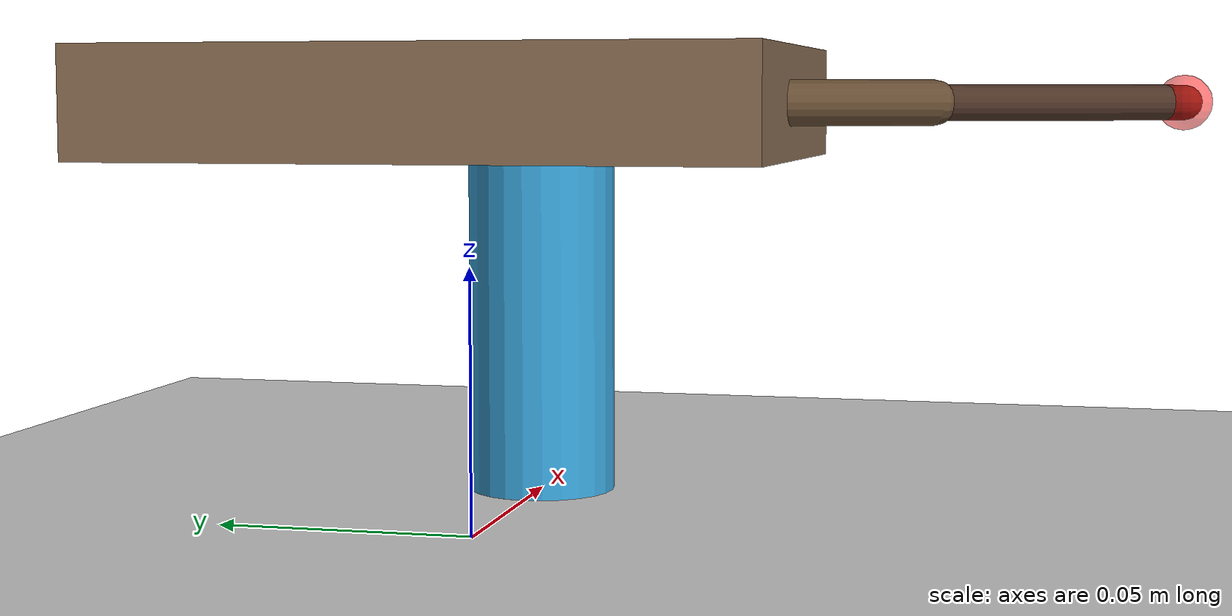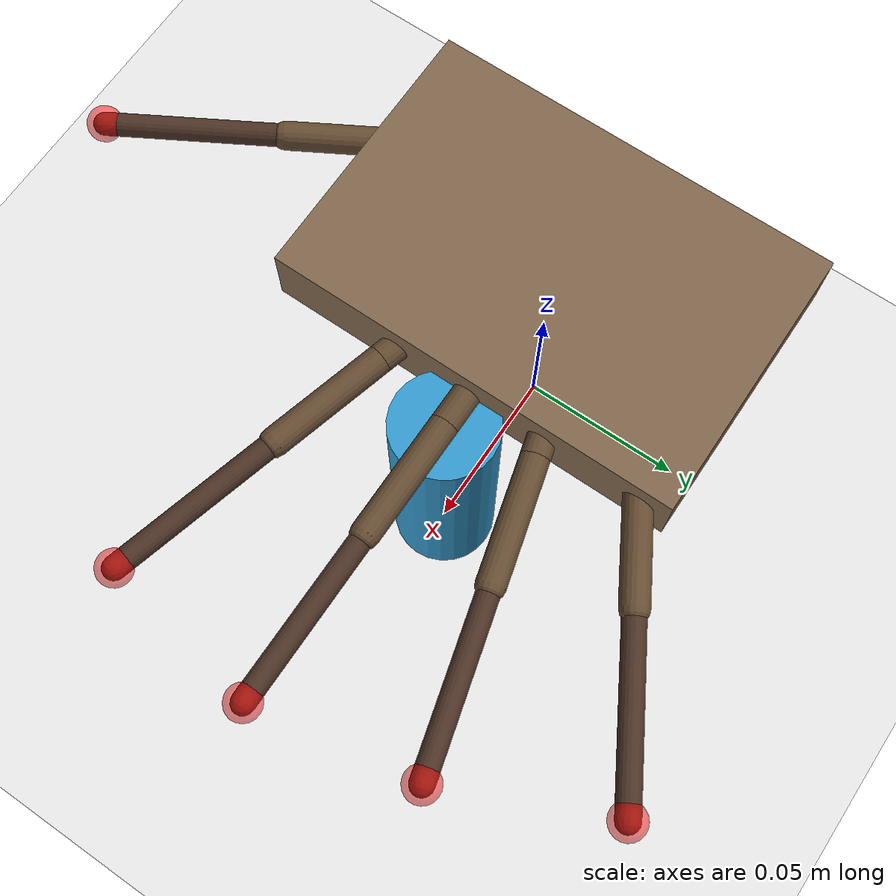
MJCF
<mujoco model="spider_hand_powergrasp">
  <compiler angle="degree"/>
  <option timestep="0.002" gravity="0 0 -9.81" integrator="RK4"/>
  <default>
    <joint damping="0.5" armature="0.01"/>
    <geom friction="1.0 0.005 0.0001" condim="3"/>
  </default>
  <worldbody>
    <light diffuse="0.5 0.5 0.5" pos="0 0 3" dir="0 0 -1"/>
    <geom name="floor" type="plane" size="1 1 0.1" rgba="0.9 0.9 0.9 1"/>

    <body name="cylinder" pos="0.05 0 0.04">
      <freejoint name="cylinder_root"/>
      <geom name="cylinder_geom" type="cylinder" size="0.015 0.04" mass="0.5" rgba="0.2 0.6 0.8 1"/>
    </body>

    <body name="palm" pos="0 0 0.08">
      <geom name="palm_geom" type="box" size="0.04 0.06 0.01" rgba="0.5 0.4 0.3 1"/>
      <body name="thumb" pos="-0.02 -0.04 0" euler="0 0 -60">
        <joint name="thumb_coxa_joint" type="hinge" axis="0 0 1" range="-60 60"/>
        <geom name="thumb_coxa_geom" type="capsule" size="0.004" fromto="0 0 0 0.015 0 0" rgba="0.4 0.3 0.2 1"/>
        <body name="thumb_femur" pos="0.015 0 0">
          <joint name="thumb_femur_joint" type="hinge" axis="0 1 0" range="-45 90"/>
          <geom name="thumb_femur_geom" type="capsule" size="0.004" fromto="0 0 0 0.035 0 0" rgba="0.4 0.3 0.2 1"/>
          <body name="thumb_tibia" pos="0.035 0 0">
            <joint name="thumb_tibia_joint" type="hinge" axis="0 1 0" range="0 120"/>
            <geom name="thumb_tibia_geom" type="capsule" size="0.0032" fromto="0 0 0 0.05 0 0" rgba="0.3 0.2 0.15 1"/>
            <site name="thumb_tip" pos="0.05 0 0" size="0.005" type="sphere" rgba="1 0 0 0.5"/>
          </body>
        </body>
      </body>
      <body name="index" pos="0.03 -0.02 0" euler="0 0 -15">
        <joint name="index_coxa_joint" type="hinge" axis="0 0 1" range="-60 60"/>
        <geom name="index_coxa_geom" type="capsule" size="0.004" fromto="0 0 0 0.015 0 0" rgba="0.4 0.3 0.2 1"/>
        <body name="index_femur" pos="0.015 0 0">
          <joint name="index_femur_joint" type="hinge" axis="0 1 0" range="-45 90"/>
          <geom name="index_femur_geom" type="capsule" size="0.004" fromto="0 0 0 0.035 0 0" rgba="0.4 0.3 0.2 1"/>
          <body name="index_tibia" pos="0.035 0 0">
            <joint name="index_tibia_joint" type="hinge" axis="0 1 0" range="0 120"/>
            <geom name="index_tibia_geom" type="capsule" size="0.0032" fromto="0 0 0 0.05 0 0" rgba="0.3 0.2 0.15 1"/>
            <site name="index_tip" pos="0.05 0 0" size="0.005" type="sphere" rgba="1 0 0 0.5"/>
          </body>
        </body>
      </body>
      <body name="middle" pos="0.035 0 0" euler="0 0 0">
        <joint name="middle_coxa_joint" type="hinge" axis="0 0 1" range="-60 60"/>
        <geom name="middle_coxa_geom" type="capsule" size="0.004" fromto="0 0 0 0.015 0 0" rgba="0.4 0.3 0.2 1"/>
        <body name="middle_femur" pos="0.015 0 0">
          <joint name="middle_femur_joint" type="hinge" axis="0 1 0" range="-45 90"/>
          <geom name="middle_femur_geom" type="capsule" size="0.004" fromto="0 0 0 0.035 0 0" rgba="0.4 0.3 0.2 1"/>
          <body name="middle_tibia" pos="0.035 0 0">
            <joint name="middle_tibia_joint" type="hinge" axis="0 1 0" range="0 120"/>
            <geom name="middle_tibia_geom" type="capsule" size="0.0032" fromto="0 0 0 0.05 0 0" rgba="0.3 0.2 0.15 1"/>
            <site name="middle_tip" pos="0.05 0 0" size="0.005" type="sphere" rgba="1 0 0 0.5"/>
          </body>
        </body>
      </body>
      <body name="ring" pos="0.03 0.02 0" euler="0 0 15">
        <joint name="ring_coxa_joint" type="hinge" axis="0 0 1" range="-60 60"/>
        <geom name="ring_coxa_geom" type="capsule" size="0.004" fromto="0 0 0 0.015 0 0" rgba="0.4 0.3 0.2 1"/>
        <body name="ring_femur" pos="0.015 0 0">
          <joint name="ring_femur_joint" type="hinge" axis="0 1 0" range="-45 90"/>
          <geom name="ring_femur_geom" type="capsule" size="0.004" fromto="0 0 0 0.035 0 0" rgba="0.4 0.3 0.2 1"/>
          <body name="ring_tibia" pos="0.035 0 0">
            <joint name="ring_tibia_joint" type="hinge" axis="0 1 0" range="0 120"/>
            <geom name="ring_tibia_geom" type="capsule" size="0.0032" fromto="0 0 0 0.05 0 0" rgba="0.3 0.2 0.15 1"/>
            <site name="ring_tip" pos="0.05 0 0" size="0.005" type="sphere" rgba="1 0 0 0.5"/>
          </body>
        </body>
      </body>
      <body name="pinky" pos="0.02 0.04 0" euler="0 0 30">
        <joint name="pinky_coxa_joint" type="hinge" axis="0 0 1" range="-60 60"/>
        <geom name="pinky_coxa_geom" type="capsule" size="0.004" fromto="0 0 0 0.015 0 0" rgba="0.4 0.3 0.2 1"/>
        <body name="pinky_femur" pos="0.015 0 0">
          <joint name="pinky_femur_joint" type="hinge" axis="0 1 0" range="-45 90"/>
          <geom name="pinky_femur_geom" type="capsule" size="0.004" fromto="0 0 0 0.035 0 0" rgba="0.4 0.3 0.2 1"/>
          <body name="pinky_tibia" pos="0.035 0 0">
            <joint name="pinky_tibia_joint" type="hinge" axis="0 1 0" range="0 120"/>
            <geom name="pinky_tibia_geom" type="capsule" size="0.0032" fromto="0 0 0 0.05 0 0" rgba="0.3 0.2 0.15 1"/>
            <site name="pinky_tip" pos="0.05 0 0" size="0.005" type="sphere" rgba="1 0 0 0.5"/>
          </body>
        </body>
      </body>
    </body>
  </worldbody>
  <actuator>
    <position name="thumb_coxa_act" joint="thumb_coxa_joint" kp="100" kv="10"/>
    <position name="thumb_femur_act" joint="thumb_femur_joint" kp="100" kv="10"/>
    <position name="thumb_tibia_act" joint="thumb_tibia_joint" kp="150" kv="15"/>
    <position name="index_coxa_act" joint="index_coxa_joint" kp="100" kv="10"/>
    <position name="index_femur_act" joint="index_femur_joint" kp="100" kv="10"/>
    <position name="index_tibia_act" joint="index_tibia_joint" kp="150" kv="15"/>
    <position name="middle_coxa_act" joint="middle_coxa_joint" kp="100" kv="10"/>
    <position name="middle_femur_act" joint="middle_femur_joint" kp="100" kv="10"/>
    <position name="middle_tibia_act" joint="middle_tibia_joint" kp="150" kv="15"/>
    <position name="ring_coxa_act" joint="ring_coxa_joint" kp="100" kv="10"/>
    <position name="ring_femur_act" joint="ring_femur_joint" kp="100" kv="10"/>
    <position name="ring_tibia_act" joint="ring_tibia_joint" kp="150" kv="15"/>
    <position name="pinky_coxa_act" joint="pinky_coxa_joint" kp="100" kv="10"/>
    <position name="pinky_femur_act" joint="pinky_femur_joint" kp="100" kv="10"/>
    <position name="pinky_tibia_act" joint="pinky_tibia_joint" kp="150" kv="15"/>
  </actuator>
  <sensor>
    <touch name="thumb_touch" site="thumb_tip"/>
    <touch name="index_touch" site="index_tip"/>
    <touch name="middle_touch" site="middle_tip"/>
    <touch name="ring_touch" site="ring_tip"/>
    <touch name="pinky_touch" site="pinky_tip"/>
  </sensor>
</mujoco>
